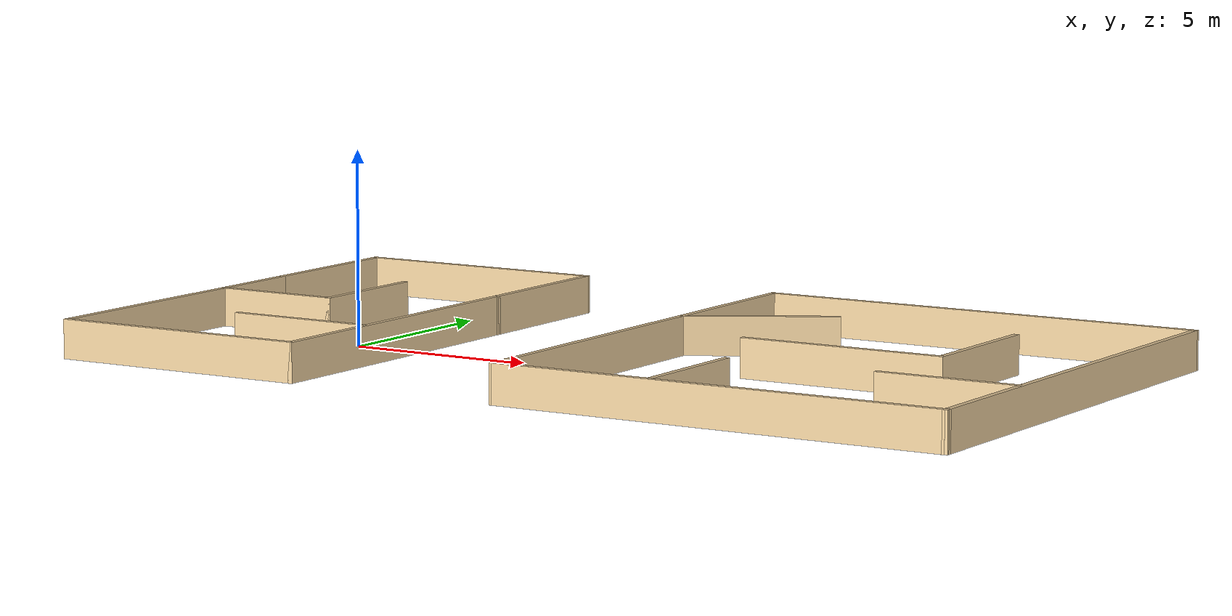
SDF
<?xml version='1.0'?>
<sdf version='1.7'>
  <model name='rl_env'>
    <pose>7.24657 1.2102 0 0 -0 0</pose>
    <link name='Wall_0'>
      <collision name='Wall_0_Collision'>
        <geometry>
          <box>
            <size>7.026 0.15 1</size>
          </box>
        </geometry>
        <pose>0 0 0.5 0 -0 0</pose>
      </collision>
      <visual name='Wall_0_Visual'>
        <pose>0 0 0.5 0 -0 0</pose>
        <geometry>
          <box>
            <size>7.026 0.15 1</size>
          </box>
        </geometry>
        <material>
          <script>
            <uri>file://media/materials/scripts/gazebo.material</uri>
            <name>Gazebo/Grey</name>
          </script>
          <ambient>0.921569 0.807843 0.615686 1</ambient>
        </material>
        <meta>
          <layer>0</layer>
        </meta>
      </visual>
      <pose>-8.82857 -6.6002 0 0 -0 0</pose>
    </link>
    <link name='Wall_1'>
      <collision name='Wall_1_Collision'>
        <geometry>
          <box>
            <size>9 0.15 1</size>
          </box>
        </geometry>
        <pose>0 0 0.5 0 -0 0</pose>
      </collision>
      <visual name='Wall_1_Visual'>
        <pose>0 0 0.5 0 -0 0</pose>
        <geometry>
          <box>
            <size>9 0.15 1</size>
          </box>
        </geometry>
        <material>
          <script>
            <uri>file://media/materials/scripts/gazebo.material</uri>
            <name>Gazebo/Grey</name>
          </script>
          <ambient>0.921569 0.807843 0.615686 1</ambient>
        </material>
        <meta>
          <layer>0</layer>
        </meta>
      </visual>
      <pose>-5.39057 -2.1752 0 0 -0 1.5708</pose>
    </link>
    <link name='Wall_10'>
      <collision name='Wall_10_Collision'>
        <geometry>
          <box>
            <size>4.5 0.15 1</size>
          </box>
        </geometry>
        <pose>0 0 0.5 0 -0 0</pose>
      </collision>
      <visual name='Wall_10_Visual'>
        <pose>0 0 0.5 0 -0 0</pose>
        <geometry>
          <box>
            <size>4.5 0.15 1</size>
          </box>
        </geometry>
        <material>
          <script>
            <uri>file://media/materials/scripts/gazebo.material</uri>
            <name>Gazebo/Grey</name>
          </script>
          <ambient>0.921569 0.807843 0.615686 1</ambient>
        </material>
        <meta>
          <layer>0</layer>
        </meta>
      </visual>
      <pose>-5.40357 4.4248 0 0 -0 1.57677</pose>
    </link>
    <link name='Wall_11'>
      <collision name='Wall_11_Collision'>
        <geometry>
          <box>
            <size>7 0.15 1</size>
          </box>
        </geometry>
        <pose>0 0 0.5 0 -0 0</pose>
      </collision>
      <visual name='Wall_11_Visual'>
        <pose>0 0 0.5 0 -0 0</pose>
        <geometry>
          <box>
            <size>7 0.15 1</size>
          </box>
        </geometry>
        <material>
          <script>
            <uri>file://media/materials/scripts/gazebo.material</uri>
            <name>Gazebo/Grey</name>
          </script>
          <ambient>0.921569 0.807843 0.615686 1</ambient>
        </material>
        <meta>
          <layer>0</layer>
        </meta>
      </visual>
      <pose>-8.84157 6.5998 0 0 -0 3.14159</pose>
    </link>
    <link name='Wall_12'>
      <collision name='Wall_12_Collision'>
        <geometry>
          <box>
            <size>4.5 0.15 1</size>
          </box>
        </geometry>
        <pose>0 0 0.5 0 -0 0</pose>
      </collision>
      <visual name='Wall_12_Visual'>
        <pose>0 0 0.5 0 -0 0</pose>
        <geometry>
          <box>
            <size>4.5 0.15 1</size>
          </box>
        </geometry>
        <material>
          <script>
            <uri>file://media/materials/scripts/gazebo.material</uri>
            <name>Gazebo/Grey</name>
          </script>
          <ambient>0.921569 0.807843 0.615686 1</ambient>
        </material>
        <meta>
          <layer>0</layer>
        </meta>
      </visual>
      <pose>-12.2666 4.4248 0 0 -0 -1.5708</pose>
    </link>
    <link name='Wall_14'>
      <collision name='Wall_14_Collision'>
        <geometry>
          <box>
            <size>3.5 0.15 1</size>
          </box>
        </geometry>
        <pose>0 0 0.5 0 -0 0</pose>
      </collision>
      <visual name='Wall_14_Visual'>
        <pose>0 0 0.5 0 -0 0</pose>
        <geometry>
          <box>
            <size>3.5 0.15 1</size>
          </box>
        </geometry>
        <material>
          <script>
            <uri>file://media/materials/scripts/gazebo.material</uri>
            <name>Gazebo/Grey</name>
          </script>
          <ambient>0.921569 0.807843 0.615686 1</ambient>
        </material>
        <meta>
          <layer>0</layer>
        </meta>
      </visual>
      <pose>-8.89757 1.4448 0 0 -0 1.5708</pose>
    </link>
    <link name='Wall_16'>
      <collision name='Wall_16_Collision'>
        <geometry>
          <box>
            <size>12 0.15 1</size>
          </box>
        </geometry>
        <pose>0 0 0.5 0 -0 0</pose>
      </collision>
      <visual name='Wall_16_Visual'>
        <pose>0 0 0.5 0 -0 0</pose>
        <geometry>
          <box>
            <size>12 0.15 1</size>
          </box>
        </geometry>
        <material>
          <script>
            <uri>file://media/materials/scripts/gazebo.material</uri>
            <name>Gazebo/Grey</name>
          </script>
          <ambient>0.921569 0.807843 0.615686 1</ambient>
        </material>
        <meta>
          <layer>0</layer>
        </meta>
      </visual>
      <pose>6.34143 -6.5702 0 0 -0 0</pose>
    </link>
    <link name='Wall_17'>
      <collision name='Wall_17_Collision'>
        <geometry>
          <box>
            <size>13.25 0.15 1</size>
          </box>
        </geometry>
        <pose>0 0 0.5 0 -0 0</pose>
      </collision>
      <visual name='Wall_17_Visual'>
        <pose>0 0 0.5 0 -0 0</pose>
        <geometry>
          <box>
            <size>13.25 0.15 1</size>
          </box>
        </geometry>
        <material>
          <script>
            <uri>file://media/materials/scripts/gazebo.material</uri>
            <name>Gazebo/Grey</name>
          </script>
          <ambient>0.921569 0.807843 0.615686 1</ambient>
        </material>
        <meta>
          <layer>0</layer>
        </meta>
      </visual>
      <pose>12.2534 -0.020204 0 0 -0 1.57278</pose>
    </link>
    <link name='Wall_18'>
      <collision name='Wall_18_Collision'>
        <geometry>
          <box>
            <size>12 0.15 1</size>
          </box>
        </geometry>
        <pose>0 0 0.5 0 -0 0</pose>
      </collision>
      <visual name='Wall_18_Visual'>
        <pose>0 0 0.5 0 -0 0</pose>
        <geometry>
          <box>
            <size>12 0.15 1</size>
          </box>
        </geometry>
        <material>
          <script>
            <uri>file://media/materials/scripts/gazebo.material</uri>
            <name>Gazebo/Grey</name>
          </script>
          <ambient>0.921569 0.807843 0.615686 1</ambient>
        </material>
        <meta>
          <layer>0</layer>
        </meta>
      </visual>
      <pose>6.31543 6.5298 0 0 -0 3.14159</pose>
    </link>
    <link name='Wall_19'>
      <collision name='Wall_19_Collision'>
        <geometry>
          <box>
            <size>13.25 0.15 1</size>
          </box>
        </geometry>
        <pose>0 0 0.5 0 -0 0</pose>
      </collision>
      <visual name='Wall_19_Visual'>
        <pose>0 0 0.5 0 -0 0</pose>
        <geometry>
          <box>
            <size>13.25 0.15 1</size>
          </box>
        </geometry>
        <material>
          <script>
            <uri>file://media/materials/scripts/gazebo.material</uri>
            <name>Gazebo/Grey</name>
          </script>
          <ambient>0.921569 0.807843 0.615686 1</ambient>
        </material>
        <meta>
          <layer>0</layer>
        </meta>
      </visual>
      <pose>0.403426 -0.020204 0 0 -0 -1.56881</pose>
    </link>
    <link name='Wall_21'>
      <collision name='Wall_21_Collision'>
        <geometry>
          <box>
            <size>5.5 0.15 1</size>
          </box>
        </geometry>
        <pose>0 0 0.5 0 -0 0</pose>
      </collision>
      <visual name='Wall_21_Visual'>
        <pose>0 0 0.5 0 -0 0</pose>
        <geometry>
          <box>
            <size>5.5 0.15 1</size>
          </box>
        </geometry>
        <material>
          <script>
            <uri>file://media/materials/scripts/gazebo.material</uri>
            <name>Gazebo/Grey</name>
          </script>
          <ambient>0.921569 0.807843 0.615686 1</ambient>
        </material>
        <meta>
          <layer>0</layer>
        </meta>
      </visual>
      <pose>6.15943 -0.253204 0 0 -0 0</pose>
    </link>
    <link name='Wall_22'>
      <collision name='Wall_22_Collision'>
        <geometry>
          <box>
            <size>4 0.15 1</size>
          </box>
        </geometry>
        <pose>0 0 0.5 0 -0 0</pose>
      </collision>
      <visual name='Wall_22_Visual'>
        <pose>0 0 0.5 0 -0 0</pose>
        <geometry>
          <box>
            <size>4 0.15 1</size>
          </box>
        </geometry>
        <material>
          <script>
            <uri>file://media/materials/scripts/gazebo.material</uri>
            <name>Gazebo/Grey</name>
          </script>
          <ambient>0.921569 0.807843 0.615686 1</ambient>
        </material>
        <meta>
          <layer>0</layer>
        </meta>
      </visual>
      <pose>8.83443 1.6718 0 0 -0 1.5708</pose>
    </link>
    <link name='Wall_24'>
      <collision name='Wall_24_Collision'>
        <geometry>
          <box>
            <size>3.5 0.15 1</size>
          </box>
        </geometry>
        <pose>0 0 0.5 0 -0 0</pose>
      </collision>
      <visual name='Wall_24_Visual'>
        <pose>0 0 0.5 0 -0 0</pose>
        <geometry>
          <box>
            <size>3.5 0.15 1</size>
          </box>
        </geometry>
        <material>
          <script>
            <uri>file://media/materials/scripts/gazebo.material</uri>
            <name>Gazebo/Grey</name>
          </script>
          <ambient>0.921569 0.807843 0.615686 1</ambient>
        </material>
        <meta>
          <layer>0</layer>
        </meta>
      </visual>
      <pose>4.65543 -4.8042 0 0 -0 1.5708</pose>
    </link>
    <link name='Wall_26'>
      <collision name='Wall_26_Collision'>
        <geometry>
          <box>
            <size>3.75 0.15 1</size>
          </box>
        </geometry>
        <pose>0 0 0.5 0 -0 0</pose>
      </collision>
      <visual name='Wall_26_Visual'>
        <pose>0 0 0.5 0 -0 0</pose>
        <geometry>
          <box>
            <size>3.75 0.15 1</size>
          </box>
        </geometry>
        <material>
          <script>
            <uri>file://media/materials/scripts/gazebo.material</uri>
            <name>Gazebo/Grey</name>
          </script>
          <ambient>0.921569 0.807843 0.615686 1</ambient>
        </material>
        <meta>
          <layer>0</layer>
        </meta>
      </visual>
      <pose>10.4094 -2.9372 0 0 -0 3.14159</pose>
    </link>
    <link name='Wall_28'>
      <collision name='Wall_28_Collision'>
        <geometry>
          <box>
            <size>4 0.15 1</size>
          </box>
        </geometry>
        <pose>0 0 0.5 0 -0 0</pose>
      </collision>
      <visual name='Wall_28_Visual'>
        <pose>0 0 0.5 0 -0 0</pose>
        <geometry>
          <box>
            <size>4 0.15 1</size>
          </box>
        </geometry>
        <material>
          <script>
            <uri>file://media/materials/scripts/gazebo.material</uri>
            <name>Gazebo/Grey</name>
          </script>
          <ambient>0.921569 0.807843 0.615686 1</ambient>
        </material>
        <meta>
          <layer>0</layer>
        </meta>
      </visual>
      <pose>2.10043 2.9213 0 0 -0 0.523624</pose>
    </link>
    <link name='Wall_3'>
      <collision name='Wall_3_Collision'>
        <geometry>
          <box>
            <size>9 0.15 1</size>
          </box>
        </geometry>
        <pose>0 0 0.5 0 -0 0</pose>
      </collision>
      <visual name='Wall_3_Visual'>
        <pose>0 0 0.5 0 -0 0</pose>
        <geometry>
          <box>
            <size>9 0.15 1</size>
          </box>
        </geometry>
        <material>
          <script>
            <uri>file://media/materials/scripts/gazebo.material</uri>
            <name>Gazebo/Grey</name>
          </script>
          <ambient>0.921569 0.807843 0.615686 1</ambient>
        </material>
        <meta>
          <layer>0</layer>
        </meta>
      </visual>
      <pose>-12.2666 -2.1752 0 0 -0 -1.5708</pose>
    </link>
    <link name='Wall_6'>
      <collision name='Wall_6_Collision'>
        <geometry>
          <box>
            <size>3.5 0.15 1</size>
          </box>
        </geometry>
        <pose>0 0 0.5 0 -0 0</pose>
      </collision>
      <visual name='Wall_6_Visual'>
        <pose>0 0 0.5 0 -0 0</pose>
        <geometry>
          <box>
            <size>3.5 0.15 1</size>
          </box>
        </geometry>
        <material>
          <script>
            <uri>file://media/materials/scripts/gazebo.material</uri>
            <name>Gazebo/Grey</name>
          </script>
          <ambient>0.921569 0.807843 0.615686 1</ambient>
        </material>
        <meta>
          <layer>0</layer>
        </meta>
      </visual>
      <pose>-10.5726 -0.230204 0 0 -0 0</pose>
    </link>
    <link name='Wall_8'>
      <collision name='Wall_8_Collision'>
        <geometry>
          <box>
            <size>4 0.15 1</size>
          </box>
        </geometry>
        <pose>0 0 0.5 0 -0 0</pose>
      </collision>
      <visual name='Wall_8_Visual'>
        <pose>0 0 0.5 0 -0 0</pose>
        <geometry>
          <box>
            <size>4 0.15 1</size>
          </box>
        </geometry>
        <material>
          <script>
            <uri>file://media/materials/scripts/gazebo.material</uri>
            <name>Gazebo/Grey</name>
          </script>
          <ambient>0.921569 0.807843 0.615686 1</ambient>
        </material>
        <meta>
          <layer>0</layer>
        </meta>
      </visual>
      <pose>-7.38457 -3.4922 0 0 -0 3.14159</pose>
    </link>
    <static>1</static>
  </model>
</sdf>
